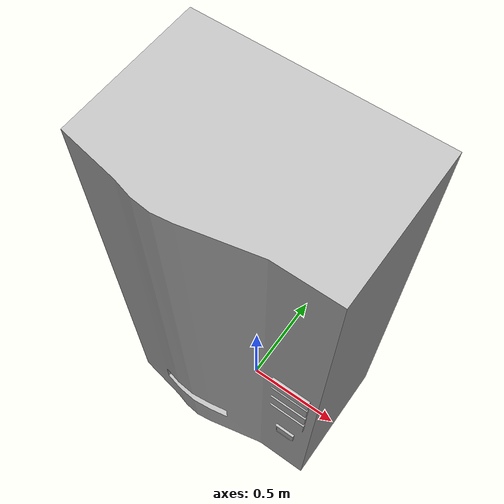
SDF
<?xml version='1.0' ?>
<sdf version='1.6'>
  <model name='vending_machine'>
    <static>true</static>
    <link name='link'>
      <collision name='collision'>
        <geometry>
          <mesh>
            <uri>model://volta_simulation/models/vending_machine/meshes/vending_machine.dae</uri>
          </mesh>
        </geometry>
        <surface>
          <friction>
            <ode>
              <mu>100</mu>
              <mu2>50</mu2>
            </ode>
          </friction>
        </surface>
      </collision>
      <visual name='visual'>
        <geometry>
          <mesh>
            <uri>model://volta_simulation/models/vending_machine/meshes/vending_machine.dae</uri>
          </mesh>
        </geometry>
        <material>
          <script>
            <uri>model://volta_simulation/models/vending_machine/materials/scripts</uri>
            <uri>model://volta_simulation/models/vending_machine/materials/textures</uri>
            <name>vending_machine</name>
          </script>
        </material>
      </visual>
      <inertial>
        <pose>-0.02087656 0.00080827 -0.14148698 0 0 0</pose>
        <mass>3</mass>
        <inertia>
          <ixx>0.13667489 </ixx>
          <iyy>0.11757832 </iyy>
          <izz>0.16535604</izz>
          <ixy>0</ixy>
          <ixz>0 </ixz>
          <iyz>0</iyz>
        </inertia>
      </inertial>
    </link>
  </model>
</sdf>
